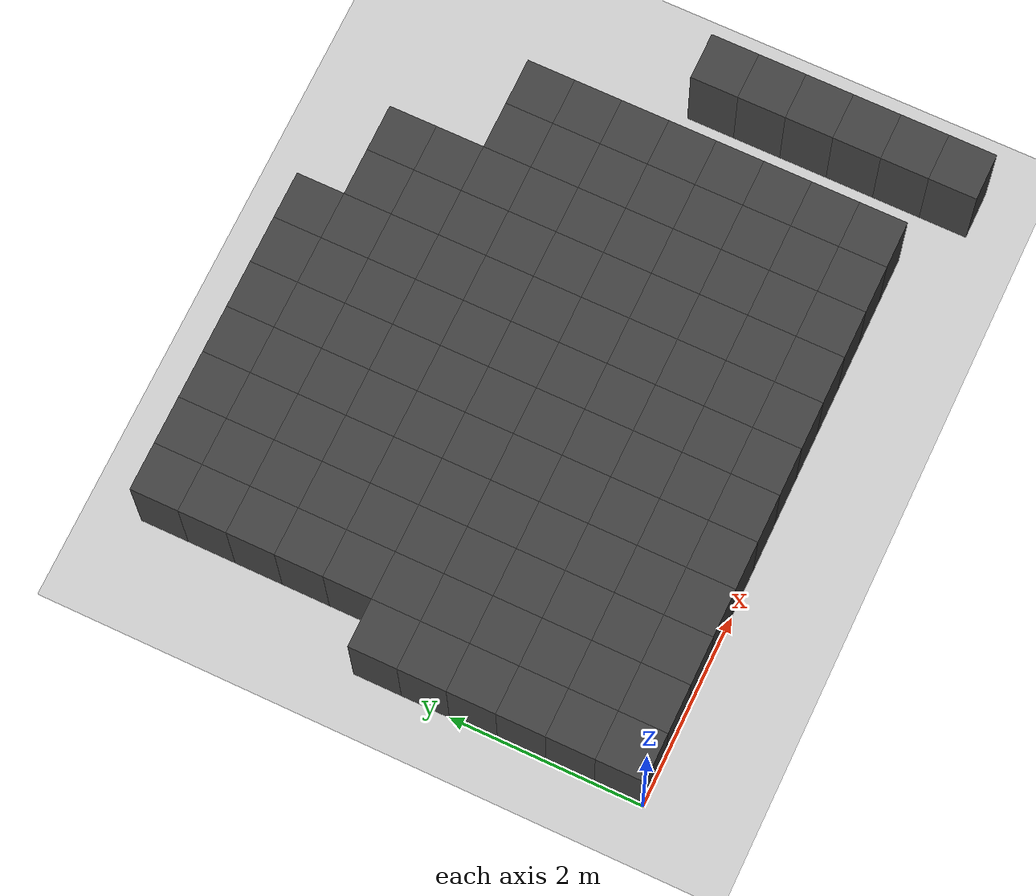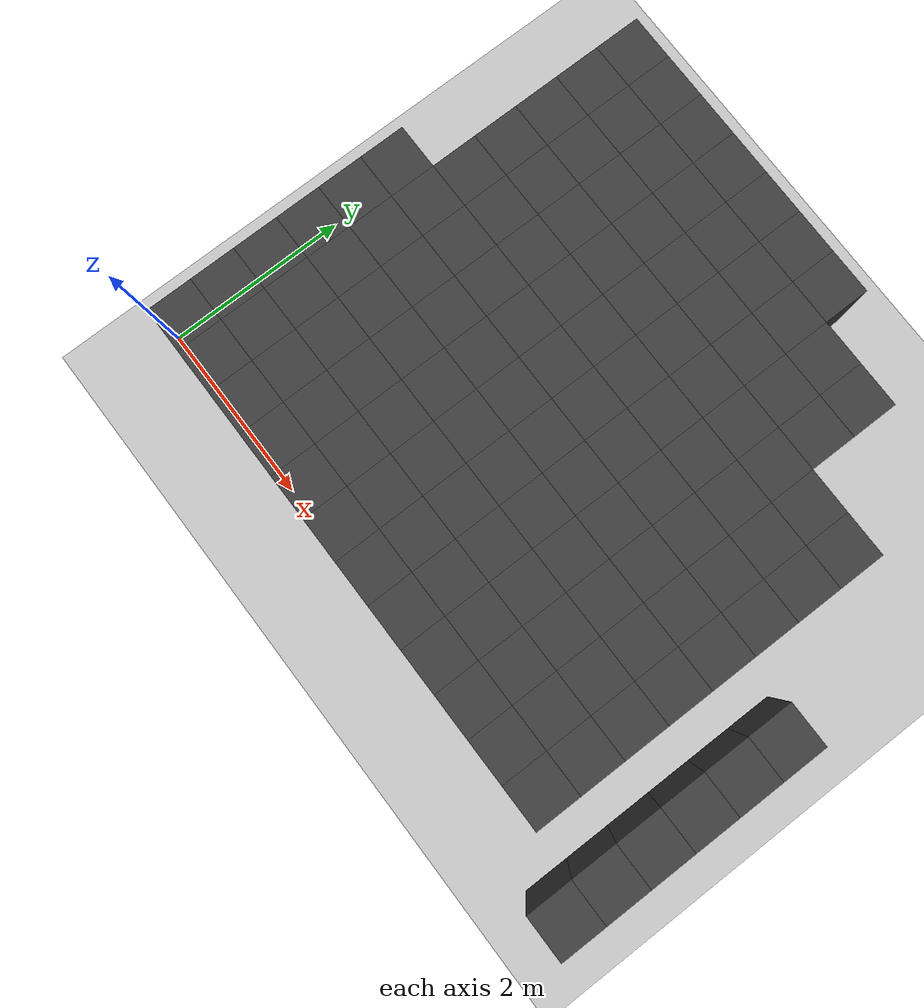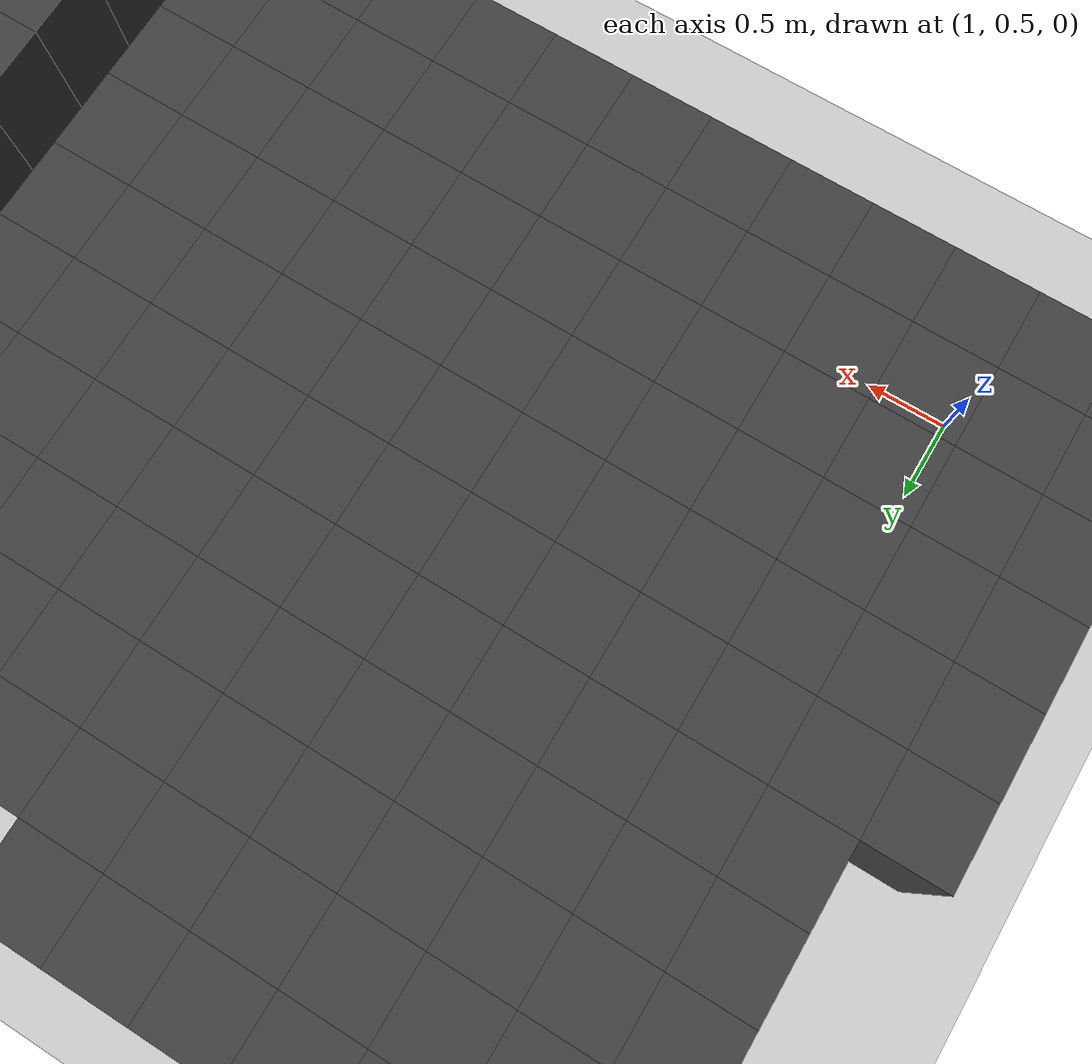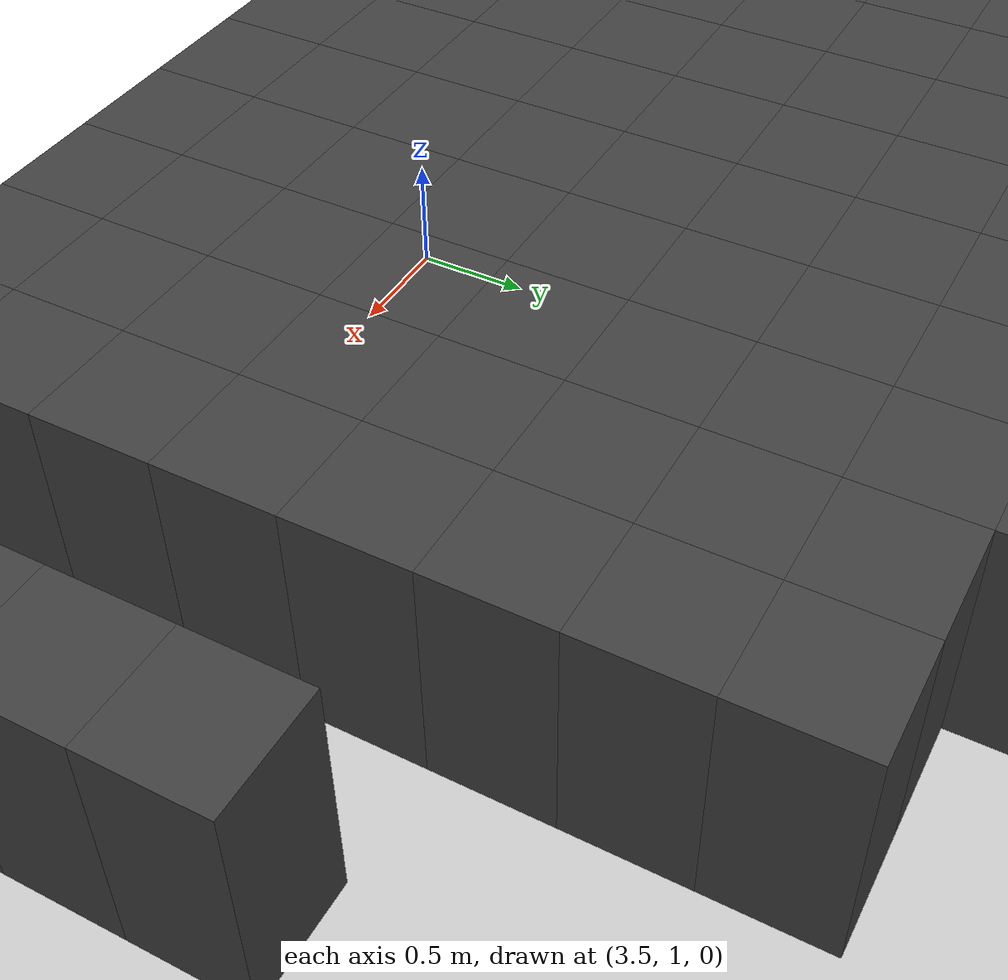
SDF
<sdf version="1.7">
 <world name="map_13820">
  <model name="ground_plane">
   <static>true</static>
   <link name="link">
    <collision name="collision">
     <geometry><plane><normal>0 0 1</normal><size>200 200</size></plane></geometry>
    </collision>
    <visual name="visual">
     <geometry><plane><normal>0 0 1</normal><size>200 200</size></plane></geometry>
     <material><ambient>0.8 0.8 0.8 1</ambient><diffuse>0.8 0.8 0.8 1</diffuse></material>
    </visual>
   </link>
  </model>
  <model name="maze_environment">
   <static>true</static>
   <link name="wall_465">
    <pose>0.750 5.250 0.500 0 0 0</pose>
    <collision name="col"><geometry><box><size>0.5 0.5 1.0</size></box></geometry></collision>
    <visual name="vis">
     <geometry><box><size>0.5 0.5 1.0</size></box></geometry>
     <material><ambient>0.15 0.15 0.15 1</ambient><diffuse>0.25 0.25 0.25 1</diffuse></material>
    </visual>
   </link>
   <link name="wall_466">
    <pose>1.250 5.250 0.500 0 0 0</pose>
    <collision name="col"><geometry><box><size>0.5 0.5 1.0</size></box></geometry></collision>
    <visual name="vis">
     <geometry><box><size>0.5 0.5 1.0</size></box></geometry>
     <material><ambient>0.15 0.15 0.15 1</ambient><diffuse>0.25 0.25 0.25 1</diffuse></material>
    </visual>
   </link>
   <link name="wall_467">
    <pose>1.750 5.250 0.500 0 0 0</pose>
    <collision name="col"><geometry><box><size>0.5 0.5 1.0</size></box></geometry></collision>
    <visual name="vis">
     <geometry><box><size>0.5 0.5 1.0</size></box></geometry>
     <material><ambient>0.15 0.15 0.15 1</ambient><diffuse>0.25 0.25 0.25 1</diffuse></material>
    </visual>
   </link>
   <link name="wall_468">
    <pose>2.250 5.250 0.500 0 0 0</pose>
    <collision name="col"><geometry><box><size>0.5 0.5 1.0</size></box></geometry></collision>
    <visual name="vis">
     <geometry><box><size>0.5 0.5 1.0</size></box></geometry>
     <material><ambient>0.15 0.15 0.15 1</ambient><diffuse>0.25 0.25 0.25 1</diffuse></material>
    </visual>
   </link>
   <link name="wall_469">
    <pose>2.750 5.250 0.500 0 0 0</pose>
    <collision name="col"><geometry><box><size>0.5 0.5 1.0</size></box></geometry></collision>
    <visual name="vis">
     <geometry><box><size>0.5 0.5 1.0</size></box></geometry>
     <material><ambient>0.15 0.15 0.15 1</ambient><diffuse>0.25 0.25 0.25 1</diffuse></material>
    </visual>
   </link>
   <link name="wall_470">
    <pose>3.250 5.250 0.500 0 0 0</pose>
    <collision name="col"><geometry><box><size>0.5 0.5 1.0</size></box></geometry></collision>
    <visual name="vis">
     <geometry><box><size>0.5 0.5 1.0</size></box></geometry>
     <material><ambient>0.15 0.15 0.15 1</ambient><diffuse>0.25 0.25 0.25 1</diffuse></material>
    </visual>
   </link>
   <link name="wall_471">
    <pose>3.750 5.250 0.500 0 0 0</pose>
    <collision name="col"><geometry><box><size>0.5 0.5 1.0</size></box></geometry></collision>
    <visual name="vis">
     <geometry><box><size>0.5 0.5 1.0</size></box></geometry>
     <material><ambient>0.15 0.15 0.15 1</ambient><diffuse>0.25 0.25 0.25 1</diffuse></material>
    </visual>
   </link>
   <link name="wall_499">
    <pose>0.750 4.750 0.500 0 0 0</pose>
    <collision name="col"><geometry><box><size>0.5 0.5 1.0</size></box></geometry></collision>
    <visual name="vis">
     <geometry><box><size>0.5 0.5 1.0</size></box></geometry>
     <material><ambient>0.15 0.15 0.15 1</ambient><diffuse>0.25 0.25 0.25 1</diffuse></material>
    </visual>
   </link>
   <link name="wall_500">
    <pose>1.250 4.750 0.500 0 0 0</pose>
    <collision name="col"><geometry><box><size>0.5 0.5 1.0</size></box></geometry></collision>
    <visual name="vis">
     <geometry><box><size>0.5 0.5 1.0</size></box></geometry>
     <material><ambient>0.15 0.15 0.15 1</ambient><diffuse>0.25 0.25 0.25 1</diffuse></material>
    </visual>
   </link>
   <link name="wall_501">
    <pose>1.750 4.750 0.500 0 0 0</pose>
    <collision name="col"><geometry><box><size>0.5 0.5 1.0</size></box></geometry></collision>
    <visual name="vis">
     <geometry><box><size>0.5 0.5 1.0</size></box></geometry>
     <material><ambient>0.15 0.15 0.15 1</ambient><diffuse>0.25 0.25 0.25 1</diffuse></material>
    </visual>
   </link>
   <link name="wall_502">
    <pose>2.250 4.750 0.500 0 0 0</pose>
    <collision name="col"><geometry><box><size>0.5 0.5 1.0</size></box></geometry></collision>
    <visual name="vis">
     <geometry><box><size>0.5 0.5 1.0</size></box></geometry>
     <material><ambient>0.15 0.15 0.15 1</ambient><diffuse>0.25 0.25 0.25 1</diffuse></material>
    </visual>
   </link>
   <link name="wall_503">
    <pose>2.750 4.750 0.500 0 0 0</pose>
    <collision name="col"><geometry><box><size>0.5 0.5 1.0</size></box></geometry></collision>
    <visual name="vis">
     <geometry><box><size>0.5 0.5 1.0</size></box></geometry>
     <material><ambient>0.15 0.15 0.15 1</ambient><diffuse>0.25 0.25 0.25 1</diffuse></material>
    </visual>
   </link>
   <link name="wall_504">
    <pose>3.250 4.750 0.500 0 0 0</pose>
    <collision name="col"><geometry><box><size>0.5 0.5 1.0</size></box></geometry></collision>
    <visual name="vis">
     <geometry><box><size>0.5 0.5 1.0</size></box></geometry>
     <material><ambient>0.15 0.15 0.15 1</ambient><diffuse>0.25 0.25 0.25 1</diffuse></material>
    </visual>
   </link>
   <link name="wall_505">
    <pose>3.750 4.750 0.500 0 0 0</pose>
    <collision name="col"><geometry><box><size>0.5 0.5 1.0</size></box></geometry></collision>
    <visual name="vis">
     <geometry><box><size>0.5 0.5 1.0</size></box></geometry>
     <material><ambient>0.15 0.15 0.15 1</ambient><diffuse>0.25 0.25 0.25 1</diffuse></material>
    </visual>
   </link>
   <link name="wall_506">
    <pose>4.250 4.750 0.500 0 0 0</pose>
    <collision name="col"><geometry><box><size>0.5 0.5 1.0</size></box></geometry></collision>
    <visual name="vis">
     <geometry><box><size>0.5 0.5 1.0</size></box></geometry>
     <material><ambient>0.15 0.15 0.15 1</ambient><diffuse>0.25 0.25 0.25 1</diffuse></material>
    </visual>
   </link>
   <link name="wall_507">
    <pose>4.750 4.750 0.500 0 0 0</pose>
    <collision name="col"><geometry><box><size>0.5 0.5 1.0</size></box></geometry></collision>
    <visual name="vis">
     <geometry><box><size>0.5 0.5 1.0</size></box></geometry>
     <material><ambient>0.15 0.15 0.15 1</ambient><diffuse>0.25 0.25 0.25 1</diffuse></material>
    </visual>
   </link>
   <link name="wall_533">
    <pose>0.750 4.250 0.500 0 0 0</pose>
    <collision name="col"><geometry><box><size>0.5 0.5 1.0</size></box></geometry></collision>
    <visual name="vis">
     <geometry><box><size>0.5 0.5 1.0</size></box></geometry>
     <material><ambient>0.15 0.15 0.15 1</ambient><diffuse>0.25 0.25 0.25 1</diffuse></material>
    </visual>
   </link>
   <link name="wall_534">
    <pose>1.250 4.250 0.500 0 0 0</pose>
    <collision name="col"><geometry><box><size>0.5 0.5 1.0</size></box></geometry></collision>
    <visual name="vis">
     <geometry><box><size>0.5 0.5 1.0</size></box></geometry>
     <material><ambient>0.15 0.15 0.15 1</ambient><diffuse>0.25 0.25 0.25 1</diffuse></material>
    </visual>
   </link>
   <link name="wall_535">
    <pose>1.750 4.250 0.500 0 0 0</pose>
    <collision name="col"><geometry><box><size>0.5 0.5 1.0</size></box></geometry></collision>
    <visual name="vis">
     <geometry><box><size>0.5 0.5 1.0</size></box></geometry>
     <material><ambient>0.15 0.15 0.15 1</ambient><diffuse>0.25 0.25 0.25 1</diffuse></material>
    </visual>
   </link>
   <link name="wall_536">
    <pose>2.250 4.250 0.500 0 0 0</pose>
    <collision name="col"><geometry><box><size>0.5 0.5 1.0</size></box></geometry></collision>
    <visual name="vis">
     <geometry><box><size>0.5 0.5 1.0</size></box></geometry>
     <material><ambient>0.15 0.15 0.15 1</ambient><diffuse>0.25 0.25 0.25 1</diffuse></material>
    </visual>
   </link>
   <link name="wall_537">
    <pose>2.750 4.250 0.500 0 0 0</pose>
    <collision name="col"><geometry><box><size>0.5 0.5 1.0</size></box></geometry></collision>
    <visual name="vis">
     <geometry><box><size>0.5 0.5 1.0</size></box></geometry>
     <material><ambient>0.15 0.15 0.15 1</ambient><diffuse>0.25 0.25 0.25 1</diffuse></material>
    </visual>
   </link>
   <link name="wall_538">
    <pose>3.250 4.250 0.500 0 0 0</pose>
    <collision name="col"><geometry><box><size>0.5 0.5 1.0</size></box></geometry></collision>
    <visual name="vis">
     <geometry><box><size>0.5 0.5 1.0</size></box></geometry>
     <material><ambient>0.15 0.15 0.15 1</ambient><diffuse>0.25 0.25 0.25 1</diffuse></material>
    </visual>
   </link>
   <link name="wall_539">
    <pose>3.750 4.250 0.500 0 0 0</pose>
    <collision name="col"><geometry><box><size>0.5 0.5 1.0</size></box></geometry></collision>
    <visual name="vis">
     <geometry><box><size>0.5 0.5 1.0</size></box></geometry>
     <material><ambient>0.15 0.15 0.15 1</ambient><diffuse>0.25 0.25 0.25 1</diffuse></material>
    </visual>
   </link>
   <link name="wall_540">
    <pose>4.250 4.250 0.500 0 0 0</pose>
    <collision name="col"><geometry><box><size>0.5 0.5 1.0</size></box></geometry></collision>
    <visual name="vis">
     <geometry><box><size>0.5 0.5 1.0</size></box></geometry>
     <material><ambient>0.15 0.15 0.15 1</ambient><diffuse>0.25 0.25 0.25 1</diffuse></material>
    </visual>
   </link>
   <link name="wall_541">
    <pose>4.750 4.250 0.500 0 0 0</pose>
    <collision name="col"><geometry><box><size>0.5 0.5 1.0</size></box></geometry></collision>
    <visual name="vis">
     <geometry><box><size>0.5 0.5 1.0</size></box></geometry>
     <material><ambient>0.15 0.15 0.15 1</ambient><diffuse>0.25 0.25 0.25 1</diffuse></material>
    </visual>
   </link>
   <link name="wall_566">
    <pose>0.750 3.750 0.500 0 0 0</pose>
    <collision name="col"><geometry><box><size>0.5 0.5 1.0</size></box></geometry></collision>
    <visual name="vis">
     <geometry><box><size>0.5 0.5 1.0</size></box></geometry>
     <material><ambient>0.15 0.15 0.15 1</ambient><diffuse>0.25 0.25 0.25 1</diffuse></material>
    </visual>
   </link>
   <link name="wall_567">
    <pose>1.250 3.750 0.500 0 0 0</pose>
    <collision name="col"><geometry><box><size>0.5 0.5 1.0</size></box></geometry></collision>
    <visual name="vis">
     <geometry><box><size>0.5 0.5 1.0</size></box></geometry>
     <material><ambient>0.15 0.15 0.15 1</ambient><diffuse>0.25 0.25 0.25 1</diffuse></material>
    </visual>
   </link>
   <link name="wall_568">
    <pose>1.750 3.750 0.500 0 0 0</pose>
    <collision name="col"><geometry><box><size>0.5 0.5 1.0</size></box></geometry></collision>
    <visual name="vis">
     <geometry><box><size>0.5 0.5 1.0</size></box></geometry>
     <material><ambient>0.15 0.15 0.15 1</ambient><diffuse>0.25 0.25 0.25 1</diffuse></material>
    </visual>
   </link>
   <link name="wall_569">
    <pose>2.250 3.750 0.500 0 0 0</pose>
    <collision name="col"><geometry><box><size>0.5 0.5 1.0</size></box></geometry></collision>
    <visual name="vis">
     <geometry><box><size>0.5 0.5 1.0</size></box></geometry>
     <material><ambient>0.15 0.15 0.15 1</ambient><diffuse>0.25 0.25 0.25 1</diffuse></material>
    </visual>
   </link>
   <link name="wall_570">
    <pose>2.750 3.750 0.500 0 0 0</pose>
    <collision name="col"><geometry><box><size>0.5 0.5 1.0</size></box></geometry></collision>
    <visual name="vis">
     <geometry><box><size>0.5 0.5 1.0</size></box></geometry>
     <material><ambient>0.15 0.15 0.15 1</ambient><diffuse>0.25 0.25 0.25 1</diffuse></material>
    </visual>
   </link>
   <link name="wall_571">
    <pose>3.250 3.750 0.500 0 0 0</pose>
    <collision name="col"><geometry><box><size>0.5 0.5 1.0</size></box></geometry></collision>
    <visual name="vis">
     <geometry><box><size>0.5 0.5 1.0</size></box></geometry>
     <material><ambient>0.15 0.15 0.15 1</ambient><diffuse>0.25 0.25 0.25 1</diffuse></material>
    </visual>
   </link>
   <link name="wall_572">
    <pose>3.750 3.750 0.500 0 0 0</pose>
    <collision name="col"><geometry><box><size>0.5 0.5 1.0</size></box></geometry></collision>
    <visual name="vis">
     <geometry><box><size>0.5 0.5 1.0</size></box></geometry>
     <material><ambient>0.15 0.15 0.15 1</ambient><diffuse>0.25 0.25 0.25 1</diffuse></material>
    </visual>
   </link>
   <link name="wall_573">
    <pose>4.250 3.750 0.500 0 0 0</pose>
    <collision name="col"><geometry><box><size>0.5 0.5 1.0</size></box></geometry></collision>
    <visual name="vis">
     <geometry><box><size>0.5 0.5 1.0</size></box></geometry>
     <material><ambient>0.15 0.15 0.15 1</ambient><diffuse>0.25 0.25 0.25 1</diffuse></material>
    </visual>
   </link>
   <link name="wall_574">
    <pose>4.750 3.750 0.500 0 0 0</pose>
    <collision name="col"><geometry><box><size>0.5 0.5 1.0</size></box></geometry></collision>
    <visual name="vis">
     <geometry><box><size>0.5 0.5 1.0</size></box></geometry>
     <material><ambient>0.15 0.15 0.15 1</ambient><diffuse>0.25 0.25 0.25 1</diffuse></material>
    </visual>
   </link>
   <link name="wall_575">
    <pose>5.250 3.750 0.500 0 0 0</pose>
    <collision name="col"><geometry><box><size>0.5 0.5 1.0</size></box></geometry></collision>
    <visual name="vis">
     <geometry><box><size>0.5 0.5 1.0</size></box></geometry>
     <material><ambient>0.15 0.15 0.15 1</ambient><diffuse>0.25 0.25 0.25 1</diffuse></material>
    </visual>
   </link>
   <link name="wall_576">
    <pose>5.750 3.750 0.500 0 0 0</pose>
    <collision name="col"><geometry><box><size>0.5 0.5 1.0</size></box></geometry></collision>
    <visual name="vis">
     <geometry><box><size>0.5 0.5 1.0</size></box></geometry>
     <material><ambient>0.15 0.15 0.15 1</ambient><diffuse>0.25 0.25 0.25 1</diffuse></material>
    </visual>
   </link>
   <link name="wall_603">
    <pose>0.750 3.250 0.500 0 0 0</pose>
    <collision name="col"><geometry><box><size>0.5 0.5 1.0</size></box></geometry></collision>
    <visual name="vis">
     <geometry><box><size>0.5 0.5 1.0</size></box></geometry>
     <material><ambient>0.15 0.15 0.15 1</ambient><diffuse>0.25 0.25 0.25 1</diffuse></material>
    </visual>
   </link>
   <link name="wall_604">
    <pose>1.250 3.250 0.500 0 0 0</pose>
    <collision name="col"><geometry><box><size>0.5 0.5 1.0</size></box></geometry></collision>
    <visual name="vis">
     <geometry><box><size>0.5 0.5 1.0</size></box></geometry>
     <material><ambient>0.15 0.15 0.15 1</ambient><diffuse>0.25 0.25 0.25 1</diffuse></material>
    </visual>
   </link>
   <link name="wall_605">
    <pose>1.750 3.250 0.500 0 0 0</pose>
    <collision name="col"><geometry><box><size>0.5 0.5 1.0</size></box></geometry></collision>
    <visual name="vis">
     <geometry><box><size>0.5 0.5 1.0</size></box></geometry>
     <material><ambient>0.15 0.15 0.15 1</ambient><diffuse>0.25 0.25 0.25 1</diffuse></material>
    </visual>
   </link>
   <link name="wall_606">
    <pose>2.250 3.250 0.500 0 0 0</pose>
    <collision name="col"><geometry><box><size>0.5 0.5 1.0</size></box></geometry></collision>
    <visual name="vis">
     <geometry><box><size>0.5 0.5 1.0</size></box></geometry>
     <material><ambient>0.15 0.15 0.15 1</ambient><diffuse>0.25 0.25 0.25 1</diffuse></material>
    </visual>
   </link>
   <link name="wall_607">
    <pose>2.750 3.250 0.500 0 0 0</pose>
    <collision name="col"><geometry><box><size>0.5 0.5 1.0</size></box></geometry></collision>
    <visual name="vis">
     <geometry><box><size>0.5 0.5 1.0</size></box></geometry>
     <material><ambient>0.15 0.15 0.15 1</ambient><diffuse>0.25 0.25 0.25 1</diffuse></material>
    </visual>
   </link>
   <link name="wall_608">
    <pose>3.250 3.250 0.500 0 0 0</pose>
    <collision name="col"><geometry><box><size>0.5 0.5 1.0</size></box></geometry></collision>
    <visual name="vis">
     <geometry><box><size>0.5 0.5 1.0</size></box></geometry>
     <material><ambient>0.15 0.15 0.15 1</ambient><diffuse>0.25 0.25 0.25 1</diffuse></material>
    </visual>
   </link>
   <link name="wall_609">
    <pose>3.750 3.250 0.500 0 0 0</pose>
    <collision name="col"><geometry><box><size>0.5 0.5 1.0</size></box></geometry></collision>
    <visual name="vis">
     <geometry><box><size>0.5 0.5 1.0</size></box></geometry>
     <material><ambient>0.15 0.15 0.15 1</ambient><diffuse>0.25 0.25 0.25 1</diffuse></material>
    </visual>
   </link>
   <link name="wall_610">
    <pose>4.250 3.250 0.500 0 0 0</pose>
    <collision name="col"><geometry><box><size>0.5 0.5 1.0</size></box></geometry></collision>
    <visual name="vis">
     <geometry><box><size>0.5 0.5 1.0</size></box></geometry>
     <material><ambient>0.15 0.15 0.15 1</ambient><diffuse>0.25 0.25 0.25 1</diffuse></material>
    </visual>
   </link>
   <link name="wall_611">
    <pose>4.750 3.250 0.500 0 0 0</pose>
    <collision name="col"><geometry><box><size>0.5 0.5 1.0</size></box></geometry></collision>
    <visual name="vis">
     <geometry><box><size>0.5 0.5 1.0</size></box></geometry>
     <material><ambient>0.15 0.15 0.15 1</ambient><diffuse>0.25 0.25 0.25 1</diffuse></material>
    </visual>
   </link>
   <link name="wall_612">
    <pose>5.250 3.250 0.500 0 0 0</pose>
    <collision name="col"><geometry><box><size>0.5 0.5 1.0</size></box></geometry></collision>
    <visual name="vis">
     <geometry><box><size>0.5 0.5 1.0</size></box></geometry>
     <material><ambient>0.15 0.15 0.15 1</ambient><diffuse>0.25 0.25 0.25 1</diffuse></material>
    </visual>
   </link>
   <link name="wall_613">
    <pose>5.750 3.250 0.500 0 0 0</pose>
    <collision name="col"><geometry><box><size>0.5 0.5 1.0</size></box></geometry></collision>
    <visual name="vis">
     <geometry><box><size>0.5 0.5 1.0</size></box></geometry>
     <material><ambient>0.15 0.15 0.15 1</ambient><diffuse>0.25 0.25 0.25 1</diffuse></material>
    </visual>
   </link>
   <link name="wall_646">
    <pose>0.250 2.750 0.500 0 0 0</pose>
    <collision name="col"><geometry><box><size>0.5 0.5 1.0</size></box></geometry></collision>
    <visual name="vis">
     <geometry><box><size>0.5 0.5 1.0</size></box></geometry>
     <material><ambient>0.15 0.15 0.15 1</ambient><diffuse>0.25 0.25 0.25 1</diffuse></material>
    </visual>
   </link>
   <link name="wall_647">
    <pose>0.750 2.750 0.500 0 0 0</pose>
    <collision name="col"><geometry><box><size>0.5 0.5 1.0</size></box></geometry></collision>
    <visual name="vis">
     <geometry><box><size>0.5 0.5 1.0</size></box></geometry>
     <material><ambient>0.15 0.15 0.15 1</ambient><diffuse>0.25 0.25 0.25 1</diffuse></material>
    </visual>
   </link>
   <link name="wall_648">
    <pose>1.250 2.750 0.500 0 0 0</pose>
    <collision name="col"><geometry><box><size>0.5 0.5 1.0</size></box></geometry></collision>
    <visual name="vis">
     <geometry><box><size>0.5 0.5 1.0</size></box></geometry>
     <material><ambient>0.15 0.15 0.15 1</ambient><diffuse>0.25 0.25 0.25 1</diffuse></material>
    </visual>
   </link>
   <link name="wall_649">
    <pose>1.750 2.750 0.500 0 0 0</pose>
    <collision name="col"><geometry><box><size>0.5 0.5 1.0</size></box></geometry></collision>
    <visual name="vis">
     <geometry><box><size>0.5 0.5 1.0</size></box></geometry>
     <material><ambient>0.15 0.15 0.15 1</ambient><diffuse>0.25 0.25 0.25 1</diffuse></material>
    </visual>
   </link>
   <link name="wall_650">
    <pose>2.250 2.750 0.500 0 0 0</pose>
    <collision name="col"><geometry><box><size>0.5 0.5 1.0</size></box></geometry></collision>
    <visual name="vis">
     <geometry><box><size>0.5 0.5 1.0</size></box></geometry>
     <material><ambient>0.15 0.15 0.15 1</ambient><diffuse>0.25 0.25 0.25 1</diffuse></material>
    </visual>
   </link>
   <link name="wall_651">
    <pose>2.750 2.750 0.500 0 0 0</pose>
    <collision name="col"><geometry><box><size>0.5 0.5 1.0</size></box></geometry></collision>
    <visual name="vis">
     <geometry><box><size>0.5 0.5 1.0</size></box></geometry>
     <material><ambient>0.15 0.15 0.15 1</ambient><diffuse>0.25 0.25 0.25 1</diffuse></material>
    </visual>
   </link>
   <link name="wall_652">
    <pose>3.250 2.750 0.500 0 0 0</pose>
    <collision name="col"><geometry><box><size>0.5 0.5 1.0</size></box></geometry></collision>
    <visual name="vis">
     <geometry><box><size>0.5 0.5 1.0</size></box></geometry>
     <material><ambient>0.15 0.15 0.15 1</ambient><diffuse>0.25 0.25 0.25 1</diffuse></material>
    </visual>
   </link>
   <link name="wall_653">
    <pose>3.750 2.750 0.500 0 0 0</pose>
    <collision name="col"><geometry><box><size>0.5 0.5 1.0</size></box></geometry></collision>
    <visual name="vis">
     <geometry><box><size>0.5 0.5 1.0</size></box></geometry>
     <material><ambient>0.15 0.15 0.15 1</ambient><diffuse>0.25 0.25 0.25 1</diffuse></material>
    </visual>
   </link>
   <link name="wall_654">
    <pose>4.250 2.750 0.500 0 0 0</pose>
    <collision name="col"><geometry><box><size>0.5 0.5 1.0</size></box></geometry></collision>
    <visual name="vis">
     <geometry><box><size>0.5 0.5 1.0</size></box></geometry>
     <material><ambient>0.15 0.15 0.15 1</ambient><diffuse>0.25 0.25 0.25 1</diffuse></material>
    </visual>
   </link>
   <link name="wall_655">
    <pose>4.750 2.750 0.500 0 0 0</pose>
    <collision name="col"><geometry><box><size>0.5 0.5 1.0</size></box></geometry></collision>
    <visual name="vis">
     <geometry><box><size>0.5 0.5 1.0</size></box></geometry>
     <material><ambient>0.15 0.15 0.15 1</ambient><diffuse>0.25 0.25 0.25 1</diffuse></material>
    </visual>
   </link>
   <link name="wall_656">
    <pose>5.250 2.750 0.500 0 0 0</pose>
    <collision name="col"><geometry><box><size>0.5 0.5 1.0</size></box></geometry></collision>
    <visual name="vis">
     <geometry><box><size>0.5 0.5 1.0</size></box></geometry>
     <material><ambient>0.15 0.15 0.15 1</ambient><diffuse>0.25 0.25 0.25 1</diffuse></material>
    </visual>
   </link>
   <link name="wall_657">
    <pose>5.750 2.750 0.500 0 0 0</pose>
    <collision name="col"><geometry><box><size>0.5 0.5 1.0</size></box></geometry></collision>
    <visual name="vis">
     <geometry><box><size>0.5 0.5 1.0</size></box></geometry>
     <material><ambient>0.15 0.15 0.15 1</ambient><diffuse>0.25 0.25 0.25 1</diffuse></material>
    </visual>
   </link>
   <link name="wall_688">
    <pose>0.250 2.250 0.500 0 0 0</pose>
    <collision name="col"><geometry><box><size>0.5 0.5 1.0</size></box></geometry></collision>
    <visual name="vis">
     <geometry><box><size>0.5 0.5 1.0</size></box></geometry>
     <material><ambient>0.15 0.15 0.15 1</ambient><diffuse>0.25 0.25 0.25 1</diffuse></material>
    </visual>
   </link>
   <link name="wall_689">
    <pose>0.750 2.250 0.500 0 0 0</pose>
    <collision name="col"><geometry><box><size>0.5 0.5 1.0</size></box></geometry></collision>
    <visual name="vis">
     <geometry><box><size>0.5 0.5 1.0</size></box></geometry>
     <material><ambient>0.15 0.15 0.15 1</ambient><diffuse>0.25 0.25 0.25 1</diffuse></material>
    </visual>
   </link>
   <link name="wall_690">
    <pose>1.250 2.250 0.500 0 0 0</pose>
    <collision name="col"><geometry><box><size>0.5 0.5 1.0</size></box></geometry></collision>
    <visual name="vis">
     <geometry><box><size>0.5 0.5 1.0</size></box></geometry>
     <material><ambient>0.15 0.15 0.15 1</ambient><diffuse>0.25 0.25 0.25 1</diffuse></material>
    </visual>
   </link>
   <link name="wall_691">
    <pose>1.750 2.250 0.500 0 0 0</pose>
    <collision name="col"><geometry><box><size>0.5 0.5 1.0</size></box></geometry></collision>
    <visual name="vis">
     <geometry><box><size>0.5 0.5 1.0</size></box></geometry>
     <material><ambient>0.15 0.15 0.15 1</ambient><diffuse>0.25 0.25 0.25 1</diffuse></material>
    </visual>
   </link>
   <link name="wall_692">
    <pose>2.250 2.250 0.500 0 0 0</pose>
    <collision name="col"><geometry><box><size>0.5 0.5 1.0</size></box></geometry></collision>
    <visual name="vis">
     <geometry><box><size>0.5 0.5 1.0</size></box></geometry>
     <material><ambient>0.15 0.15 0.15 1</ambient><diffuse>0.25 0.25 0.25 1</diffuse></material>
    </visual>
   </link>
   <link name="wall_693">
    <pose>2.750 2.250 0.500 0 0 0</pose>
    <collision name="col"><geometry><box><size>0.5 0.5 1.0</size></box></geometry></collision>
    <visual name="vis">
     <geometry><box><size>0.5 0.5 1.0</size></box></geometry>
     <material><ambient>0.15 0.15 0.15 1</ambient><diffuse>0.25 0.25 0.25 1</diffuse></material>
    </visual>
   </link>
   <link name="wall_694">
    <pose>3.250 2.250 0.500 0 0 0</pose>
    <collision name="col"><geometry><box><size>0.5 0.5 1.0</size></box></geometry></collision>
    <visual name="vis">
     <geometry><box><size>0.5 0.5 1.0</size></box></geometry>
     <material><ambient>0.15 0.15 0.15 1</ambient><diffuse>0.25 0.25 0.25 1</diffuse></material>
    </visual>
   </link>
   <link name="wall_695">
    <pose>3.750 2.250 0.500 0 0 0</pose>
    <collision name="col"><geometry><box><size>0.5 0.5 1.0</size></box></geometry></collision>
    <visual name="vis">
     <geometry><box><size>0.5 0.5 1.0</size></box></geometry>
     <material><ambient>0.15 0.15 0.15 1</ambient><diffuse>0.25 0.25 0.25 1</diffuse></material>
    </visual>
   </link>
   <link name="wall_696">
    <pose>4.250 2.250 0.500 0 0 0</pose>
    <collision name="col"><geometry><box><size>0.5 0.5 1.0</size></box></geometry></collision>
    <visual name="vis">
     <geometry><box><size>0.5 0.5 1.0</size></box></geometry>
     <material><ambient>0.15 0.15 0.15 1</ambient><diffuse>0.25 0.25 0.25 1</diffuse></material>
    </visual>
   </link>
   <link name="wall_697">
    <pose>4.750 2.250 0.500 0 0 0</pose>
    <collision name="col"><geometry><box><size>0.5 0.5 1.0</size></box></geometry></collision>
    <visual name="vis">
     <geometry><box><size>0.5 0.5 1.0</size></box></geometry>
     <material><ambient>0.15 0.15 0.15 1</ambient><diffuse>0.25 0.25 0.25 1</diffuse></material>
    </visual>
   </link>
   <link name="wall_698">
    <pose>5.250 2.250 0.500 0 0 0</pose>
    <collision name="col"><geometry><box><size>0.5 0.5 1.0</size></box></geometry></collision>
    <visual name="vis">
     <geometry><box><size>0.5 0.5 1.0</size></box></geometry>
     <material><ambient>0.15 0.15 0.15 1</ambient><diffuse>0.25 0.25 0.25 1</diffuse></material>
    </visual>
   </link>
   <link name="wall_699">
    <pose>5.750 2.250 0.500 0 0 0</pose>
    <collision name="col"><geometry><box><size>0.5 0.5 1.0</size></box></geometry></collision>
    <visual name="vis">
     <geometry><box><size>0.5 0.5 1.0</size></box></geometry>
     <material><ambient>0.15 0.15 0.15 1</ambient><diffuse>0.25 0.25 0.25 1</diffuse></material>
    </visual>
   </link>
   <link name="wall_700">
    <pose>6.750 2.250 0.500 0 0 0</pose>
    <collision name="col"><geometry><box><size>0.5 0.5 1.0</size></box></geometry></collision>
    <visual name="vis">
     <geometry><box><size>0.5 0.5 1.0</size></box></geometry>
     <material><ambient>0.15 0.15 0.15 1</ambient><diffuse>0.25 0.25 0.25 1</diffuse></material>
    </visual>
   </link>
   <link name="wall_730">
    <pose>0.250 1.750 0.500 0 0 0</pose>
    <collision name="col"><geometry><box><size>0.5 0.5 1.0</size></box></geometry></collision>
    <visual name="vis">
     <geometry><box><size>0.5 0.5 1.0</size></box></geometry>
     <material><ambient>0.15 0.15 0.15 1</ambient><diffuse>0.25 0.25 0.25 1</diffuse></material>
    </visual>
   </link>
   <link name="wall_731">
    <pose>0.750 1.750 0.500 0 0 0</pose>
    <collision name="col"><geometry><box><size>0.5 0.5 1.0</size></box></geometry></collision>
    <visual name="vis">
     <geometry><box><size>0.5 0.5 1.0</size></box></geometry>
     <material><ambient>0.15 0.15 0.15 1</ambient><diffuse>0.25 0.25 0.25 1</diffuse></material>
    </visual>
   </link>
   <link name="wall_732">
    <pose>1.250 1.750 0.500 0 0 0</pose>
    <collision name="col"><geometry><box><size>0.5 0.5 1.0</size></box></geometry></collision>
    <visual name="vis">
     <geometry><box><size>0.5 0.5 1.0</size></box></geometry>
     <material><ambient>0.15 0.15 0.15 1</ambient><diffuse>0.25 0.25 0.25 1</diffuse></material>
    </visual>
   </link>
   <link name="wall_733">
    <pose>1.750 1.750 0.500 0 0 0</pose>
    <collision name="col"><geometry><box><size>0.5 0.5 1.0</size></box></geometry></collision>
    <visual name="vis">
     <geometry><box><size>0.5 0.5 1.0</size></box></geometry>
     <material><ambient>0.15 0.15 0.15 1</ambient><diffuse>0.25 0.25 0.25 1</diffuse></material>
    </visual>
   </link>
   <link name="wall_734">
    <pose>2.250 1.750 0.500 0 0 0</pose>
    <collision name="col"><geometry><box><size>0.5 0.5 1.0</size></box></geometry></collision>
    <visual name="vis">
     <geometry><box><size>0.5 0.5 1.0</size></box></geometry>
     <material><ambient>0.15 0.15 0.15 1</ambient><diffuse>0.25 0.25 0.25 1</diffuse></material>
    </visual>
   </link>
   <link name="wall_735">
    <pose>2.750 1.750 0.500 0 0 0</pose>
    <collision name="col"><geometry><box><size>0.5 0.5 1.0</size></box></geometry></collision>
    <visual name="vis">
     <geometry><box><size>0.5 0.5 1.0</size></box></geometry>
     <material><ambient>0.15 0.15 0.15 1</ambient><diffuse>0.25 0.25 0.25 1</diffuse></material>
    </visual>
   </link>
   <link name="wall_736">
    <pose>3.250 1.750 0.500 0 0 0</pose>
    <collision name="col"><geometry><box><size>0.5 0.5 1.0</size></box></geometry></collision>
    <visual name="vis">
     <geometry><box><size>0.5 0.5 1.0</size></box></geometry>
     <material><ambient>0.15 0.15 0.15 1</ambient><diffuse>0.25 0.25 0.25 1</diffuse></material>
    </visual>
   </link>
   <link name="wall_737">
    <pose>3.750 1.750 0.500 0 0 0</pose>
    <collision name="col"><geometry><box><size>0.5 0.5 1.0</size></box></geometry></collision>
    <visual name="vis">
     <geometry><box><size>0.5 0.5 1.0</size></box></geometry>
     <material><ambient>0.15 0.15 0.15 1</ambient><diffuse>0.25 0.25 0.25 1</diffuse></material>
    </visual>
   </link>
   <link name="wall_738">
    <pose>4.250 1.750 0.500 0 0 0</pose>
    <collision name="col"><geometry><box><size>0.5 0.5 1.0</size></box></geometry></collision>
    <visual name="vis">
     <geometry><box><size>0.5 0.5 1.0</size></box></geometry>
     <material><ambient>0.15 0.15 0.15 1</ambient><diffuse>0.25 0.25 0.25 1</diffuse></material>
    </visual>
   </link>
   <link name="wall_739">
    <pose>4.750 1.750 0.500 0 0 0</pose>
    <collision name="col"><geometry><box><size>0.5 0.5 1.0</size></box></geometry></collision>
    <visual name="vis">
     <geometry><box><size>0.5 0.5 1.0</size></box></geometry>
     <material><ambient>0.15 0.15 0.15 1</ambient><diffuse>0.25 0.25 0.25 1</diffuse></material>
    </visual>
   </link>
   <link name="wall_740">
    <pose>5.250 1.750 0.500 0 0 0</pose>
    <collision name="col"><geometry><box><size>0.5 0.5 1.0</size></box></geometry></collision>
    <visual name="vis">
     <geometry><box><size>0.5 0.5 1.0</size></box></geometry>
     <material><ambient>0.15 0.15 0.15 1</ambient><diffuse>0.25 0.25 0.25 1</diffuse></material>
    </visual>
   </link>
   <link name="wall_741">
    <pose>5.750 1.750 0.500 0 0 0</pose>
    <collision name="col"><geometry><box><size>0.5 0.5 1.0</size></box></geometry></collision>
    <visual name="vis">
     <geometry><box><size>0.5 0.5 1.0</size></box></geometry>
     <material><ambient>0.15 0.15 0.15 1</ambient><diffuse>0.25 0.25 0.25 1</diffuse></material>
    </visual>
   </link>
   <link name="wall_742">
    <pose>6.750 1.750 0.500 0 0 0</pose>
    <collision name="col"><geometry><box><size>0.5 0.5 1.0</size></box></geometry></collision>
    <visual name="vis">
     <geometry><box><size>0.5 0.5 1.0</size></box></geometry>
     <material><ambient>0.15 0.15 0.15 1</ambient><diffuse>0.25 0.25 0.25 1</diffuse></material>
    </visual>
   </link>
   <link name="wall_772">
    <pose>0.250 1.250 0.500 0 0 0</pose>
    <collision name="col"><geometry><box><size>0.5 0.5 1.0</size></box></geometry></collision>
    <visual name="vis">
     <geometry><box><size>0.5 0.5 1.0</size></box></geometry>
     <material><ambient>0.15 0.15 0.15 1</ambient><diffuse>0.25 0.25 0.25 1</diffuse></material>
    </visual>
   </link>
   <link name="wall_773">
    <pose>0.750 1.250 0.500 0 0 0</pose>
    <collision name="col"><geometry><box><size>0.5 0.5 1.0</size></box></geometry></collision>
    <visual name="vis">
     <geometry><box><size>0.5 0.5 1.0</size></box></geometry>
     <material><ambient>0.15 0.15 0.15 1</ambient><diffuse>0.25 0.25 0.25 1</diffuse></material>
    </visual>
   </link>
   <link name="wall_774">
    <pose>1.250 1.250 0.500 0 0 0</pose>
    <collision name="col"><geometry><box><size>0.5 0.5 1.0</size></box></geometry></collision>
    <visual name="vis">
     <geometry><box><size>0.5 0.5 1.0</size></box></geometry>
     <material><ambient>0.15 0.15 0.15 1</ambient><diffuse>0.25 0.25 0.25 1</diffuse></material>
    </visual>
   </link>
   <link name="wall_775">
    <pose>1.750 1.250 0.500 0 0 0</pose>
    <collision name="col"><geometry><box><size>0.5 0.5 1.0</size></box></geometry></collision>
    <visual name="vis">
     <geometry><box><size>0.5 0.5 1.0</size></box></geometry>
     <material><ambient>0.15 0.15 0.15 1</ambient><diffuse>0.25 0.25 0.25 1</diffuse></material>
    </visual>
   </link>
   <link name="wall_776">
    <pose>2.250 1.250 0.500 0 0 0</pose>
    <collision name="col"><geometry><box><size>0.5 0.5 1.0</size></box></geometry></collision>
    <visual name="vis">
     <geometry><box><size>0.5 0.5 1.0</size></box></geometry>
     <material><ambient>0.15 0.15 0.15 1</ambient><diffuse>0.25 0.25 0.25 1</diffuse></material>
    </visual>
   </link>
   <link name="wall_777">
    <pose>2.750 1.250 0.500 0 0 0</pose>
    <collision name="col"><geometry><box><size>0.5 0.5 1.0</size></box></geometry></collision>
    <visual name="vis">
     <geometry><box><size>0.5 0.5 1.0</size></box></geometry>
     <material><ambient>0.15 0.15 0.15 1</ambient><diffuse>0.25 0.25 0.25 1</diffuse></material>
    </visual>
   </link>
   <link name="wall_778">
    <pose>3.250 1.250 0.500 0 0 0</pose>
    <collision name="col"><geometry><box><size>0.5 0.5 1.0</size></box></geometry></collision>
    <visual name="vis">
     <geometry><box><size>0.5 0.5 1.0</size></box></geometry>
     <material><ambient>0.15 0.15 0.15 1</ambient><diffuse>0.25 0.25 0.25 1</diffuse></material>
    </visual>
   </link>
   <link name="wall_779">
    <pose>3.750 1.250 0.500 0 0 0</pose>
    <collision name="col"><geometry><box><size>0.5 0.5 1.0</size></box></geometry></collision>
    <visual name="vis">
     <geometry><box><size>0.5 0.5 1.0</size></box></geometry>
     <material><ambient>0.15 0.15 0.15 1</ambient><diffuse>0.25 0.25 0.25 1</diffuse></material>
    </visual>
   </link>
   <link name="wall_780">
    <pose>4.250 1.250 0.500 0 0 0</pose>
    <collision name="col"><geometry><box><size>0.5 0.5 1.0</size></box></geometry></collision>
    <visual name="vis">
     <geometry><box><size>0.5 0.5 1.0</size></box></geometry>
     <material><ambient>0.15 0.15 0.15 1</ambient><diffuse>0.25 0.25 0.25 1</diffuse></material>
    </visual>
   </link>
   <link name="wall_781">
    <pose>4.750 1.250 0.500 0 0 0</pose>
    <collision name="col"><geometry><box><size>0.5 0.5 1.0</size></box></geometry></collision>
    <visual name="vis">
     <geometry><box><size>0.5 0.5 1.0</size></box></geometry>
     <material><ambient>0.15 0.15 0.15 1</ambient><diffuse>0.25 0.25 0.25 1</diffuse></material>
    </visual>
   </link>
   <link name="wall_782">
    <pose>5.250 1.250 0.500 0 0 0</pose>
    <collision name="col"><geometry><box><size>0.5 0.5 1.0</size></box></geometry></collision>
    <visual name="vis">
     <geometry><box><size>0.5 0.5 1.0</size></box></geometry>
     <material><ambient>0.15 0.15 0.15 1</ambient><diffuse>0.25 0.25 0.25 1</diffuse></material>
    </visual>
   </link>
   <link name="wall_783">
    <pose>5.750 1.250 0.500 0 0 0</pose>
    <collision name="col"><geometry><box><size>0.5 0.5 1.0</size></box></geometry></collision>
    <visual name="vis">
     <geometry><box><size>0.5 0.5 1.0</size></box></geometry>
     <material><ambient>0.15 0.15 0.15 1</ambient><diffuse>0.25 0.25 0.25 1</diffuse></material>
    </visual>
   </link>
   <link name="wall_784">
    <pose>6.750 1.250 0.500 0 0 0</pose>
    <collision name="col"><geometry><box><size>0.5 0.5 1.0</size></box></geometry></collision>
    <visual name="vis">
     <geometry><box><size>0.5 0.5 1.0</size></box></geometry>
     <material><ambient>0.15 0.15 0.15 1</ambient><diffuse>0.25 0.25 0.25 1</diffuse></material>
    </visual>
   </link>
   <link name="wall_814">
    <pose>0.250 0.750 0.500 0 0 0</pose>
    <collision name="col"><geometry><box><size>0.5 0.5 1.0</size></box></geometry></collision>
    <visual name="vis">
     <geometry><box><size>0.5 0.5 1.0</size></box></geometry>
     <material><ambient>0.15 0.15 0.15 1</ambient><diffuse>0.25 0.25 0.25 1</diffuse></material>
    </visual>
   </link>
   <link name="wall_815">
    <pose>0.750 0.750 0.500 0 0 0</pose>
    <collision name="col"><geometry><box><size>0.5 0.5 1.0</size></box></geometry></collision>
    <visual name="vis">
     <geometry><box><size>0.5 0.5 1.0</size></box></geometry>
     <material><ambient>0.15 0.15 0.15 1</ambient><diffuse>0.25 0.25 0.25 1</diffuse></material>
    </visual>
   </link>
   <link name="wall_816">
    <pose>1.250 0.750 0.500 0 0 0</pose>
    <collision name="col"><geometry><box><size>0.5 0.5 1.0</size></box></geometry></collision>
    <visual name="vis">
     <geometry><box><size>0.5 0.5 1.0</size></box></geometry>
     <material><ambient>0.15 0.15 0.15 1</ambient><diffuse>0.25 0.25 0.25 1</diffuse></material>
    </visual>
   </link>
   <link name="wall_817">
    <pose>1.750 0.750 0.500 0 0 0</pose>
    <collision name="col"><geometry><box><size>0.5 0.5 1.0</size></box></geometry></collision>
    <visual name="vis">
     <geometry><box><size>0.5 0.5 1.0</size></box></geometry>
     <material><ambient>0.15 0.15 0.15 1</ambient><diffuse>0.25 0.25 0.25 1</diffuse></material>
    </visual>
   </link>
   <link name="wall_818">
    <pose>2.250 0.750 0.500 0 0 0</pose>
    <collision name="col"><geometry><box><size>0.5 0.5 1.0</size></box></geometry></collision>
    <visual name="vis">
     <geometry><box><size>0.5 0.5 1.0</size></box></geometry>
     <material><ambient>0.15 0.15 0.15 1</ambient><diffuse>0.25 0.25 0.25 1</diffuse></material>
    </visual>
   </link>
   <link name="wall_819">
    <pose>2.750 0.750 0.500 0 0 0</pose>
    <collision name="col"><geometry><box><size>0.5 0.5 1.0</size></box></geometry></collision>
    <visual name="vis">
     <geometry><box><size>0.5 0.5 1.0</size></box></geometry>
     <material><ambient>0.15 0.15 0.15 1</ambient><diffuse>0.25 0.25 0.25 1</diffuse></material>
    </visual>
   </link>
   <link name="wall_820">
    <pose>3.250 0.750 0.500 0 0 0</pose>
    <collision name="col"><geometry><box><size>0.5 0.5 1.0</size></box></geometry></collision>
    <visual name="vis">
     <geometry><box><size>0.5 0.5 1.0</size></box></geometry>
     <material><ambient>0.15 0.15 0.15 1</ambient><diffuse>0.25 0.25 0.25 1</diffuse></material>
    </visual>
   </link>
   <link name="wall_821">
    <pose>3.750 0.750 0.500 0 0 0</pose>
    <collision name="col"><geometry><box><size>0.5 0.5 1.0</size></box></geometry></collision>
    <visual name="vis">
     <geometry><box><size>0.5 0.5 1.0</size></box></geometry>
     <material><ambient>0.15 0.15 0.15 1</ambient><diffuse>0.25 0.25 0.25 1</diffuse></material>
    </visual>
   </link>
   <link name="wall_822">
    <pose>4.250 0.750 0.500 0 0 0</pose>
    <collision name="col"><geometry><box><size>0.5 0.5 1.0</size></box></geometry></collision>
    <visual name="vis">
     <geometry><box><size>0.5 0.5 1.0</size></box></geometry>
     <material><ambient>0.15 0.15 0.15 1</ambient><diffuse>0.25 0.25 0.25 1</diffuse></material>
    </visual>
   </link>
   <link name="wall_823">
    <pose>4.750 0.750 0.500 0 0 0</pose>
    <collision name="col"><geometry><box><size>0.5 0.5 1.0</size></box></geometry></collision>
    <visual name="vis">
     <geometry><box><size>0.5 0.5 1.0</size></box></geometry>
     <material><ambient>0.15 0.15 0.15 1</ambient><diffuse>0.25 0.25 0.25 1</diffuse></material>
    </visual>
   </link>
   <link name="wall_824">
    <pose>5.250 0.750 0.500 0 0 0</pose>
    <collision name="col"><geometry><box><size>0.5 0.5 1.0</size></box></geometry></collision>
    <visual name="vis">
     <geometry><box><size>0.5 0.5 1.0</size></box></geometry>
     <material><ambient>0.15 0.15 0.15 1</ambient><diffuse>0.25 0.25 0.25 1</diffuse></material>
    </visual>
   </link>
   <link name="wall_825">
    <pose>5.750 0.750 0.500 0 0 0</pose>
    <collision name="col"><geometry><box><size>0.5 0.5 1.0</size></box></geometry></collision>
    <visual name="vis">
     <geometry><box><size>0.5 0.5 1.0</size></box></geometry>
     <material><ambient>0.15 0.15 0.15 1</ambient><diffuse>0.25 0.25 0.25 1</diffuse></material>
    </visual>
   </link>
   <link name="wall_826">
    <pose>6.750 0.750 0.500 0 0 0</pose>
    <collision name="col"><geometry><box><size>0.5 0.5 1.0</size></box></geometry></collision>
    <visual name="vis">
     <geometry><box><size>0.5 0.5 1.0</size></box></geometry>
     <material><ambient>0.15 0.15 0.15 1</ambient><diffuse>0.25 0.25 0.25 1</diffuse></material>
    </visual>
   </link>
   <link name="wall_856">
    <pose>0.250 0.250 0.500 0 0 0</pose>
    <collision name="col"><geometry><box><size>0.5 0.5 1.0</size></box></geometry></collision>
    <visual name="vis">
     <geometry><box><size>0.5 0.5 1.0</size></box></geometry>
     <material><ambient>0.15 0.15 0.15 1</ambient><diffuse>0.25 0.25 0.25 1</diffuse></material>
    </visual>
   </link>
   <link name="wall_857">
    <pose>0.750 0.250 0.500 0 0 0</pose>
    <collision name="col"><geometry><box><size>0.5 0.5 1.0</size></box></geometry></collision>
    <visual name="vis">
     <geometry><box><size>0.5 0.5 1.0</size></box></geometry>
     <material><ambient>0.15 0.15 0.15 1</ambient><diffuse>0.25 0.25 0.25 1</diffuse></material>
    </visual>
   </link>
   <link name="wall_858">
    <pose>1.250 0.250 0.500 0 0 0</pose>
    <collision name="col"><geometry><box><size>0.5 0.5 1.0</size></box></geometry></collision>
    <visual name="vis">
     <geometry><box><size>0.5 0.5 1.0</size></box></geometry>
     <material><ambient>0.15 0.15 0.15 1</ambient><diffuse>0.25 0.25 0.25 1</diffuse></material>
    </visual>
   </link>
   <link name="wall_859">
    <pose>1.750 0.250 0.500 0 0 0</pose>
    <collision name="col"><geometry><box><size>0.5 0.5 1.0</size></box></geometry></collision>
    <visual name="vis">
     <geometry><box><size>0.5 0.5 1.0</size></box></geometry>
     <material><ambient>0.15 0.15 0.15 1</ambient><diffuse>0.25 0.25 0.25 1</diffuse></material>
    </visual>
   </link>
   <link name="wall_860">
    <pose>2.250 0.250 0.500 0 0 0</pose>
    <collision name="col"><geometry><box><size>0.5 0.5 1.0</size></box></geometry></collision>
    <visual name="vis">
     <geometry><box><size>0.5 0.5 1.0</size></box></geometry>
     <material><ambient>0.15 0.15 0.15 1</ambient><diffuse>0.25 0.25 0.25 1</diffuse></material>
    </visual>
   </link>
   <link name="wall_861">
    <pose>2.750 0.250 0.500 0 0 0</pose>
    <collision name="col"><geometry><box><size>0.5 0.5 1.0</size></box></geometry></collision>
    <visual name="vis">
     <geometry><box><size>0.5 0.5 1.0</size></box></geometry>
     <material><ambient>0.15 0.15 0.15 1</ambient><diffuse>0.25 0.25 0.25 1</diffuse></material>
    </visual>
   </link>
   <link name="wall_862">
    <pose>3.250 0.250 0.500 0 0 0</pose>
    <collision name="col"><geometry><box><size>0.5 0.5 1.0</size></box></geometry></collision>
    <visual name="vis">
     <geometry><box><size>0.5 0.5 1.0</size></box></geometry>
     <material><ambient>0.15 0.15 0.15 1</ambient><diffuse>0.25 0.25 0.25 1</diffuse></material>
    </visual>
   </link>
   <link name="wall_863">
    <pose>3.750 0.250 0.500 0 0 0</pose>
    <collision name="col"><geometry><box><size>0.5 0.5 1.0</size></box></geometry></collision>
    <visual name="vis">
     <geometry><box><size>0.5 0.5 1.0</size></box></geometry>
     <material><ambient>0.15 0.15 0.15 1</ambient><diffuse>0.25 0.25 0.25 1</diffuse></material>
    </visual>
   </link>
   <link name="wall_864">
    <pose>4.250 0.250 0.500 0 0 0</pose>
    <collision name="col"><geometry><box><size>0.5 0.5 1.0</size></box></geometry></collision>
    <visual name="vis">
     <geometry><box><size>0.5 0.5 1.0</size></box></geometry>
     <material><ambient>0.15 0.15 0.15 1</ambient><diffuse>0.25 0.25 0.25 1</diffuse></material>
    </visual>
   </link>
   <link name="wall_865">
    <pose>4.750 0.250 0.500 0 0 0</pose>
    <collision name="col"><geometry><box><size>0.5 0.5 1.0</size></box></geometry></collision>
    <visual name="vis">
     <geometry><box><size>0.5 0.5 1.0</size></box></geometry>
     <material><ambient>0.15 0.15 0.15 1</ambient><diffuse>0.25 0.25 0.25 1</diffuse></material>
    </visual>
   </link>
   <link name="wall_866">
    <pose>5.250 0.250 0.500 0 0 0</pose>
    <collision name="col"><geometry><box><size>0.5 0.5 1.0</size></box></geometry></collision>
    <visual name="vis">
     <geometry><box><size>0.5 0.5 1.0</size></box></geometry>
     <material><ambient>0.15 0.15 0.15 1</ambient><diffuse>0.25 0.25 0.25 1</diffuse></material>
    </visual>
   </link>
   <link name="wall_867">
    <pose>5.750 0.250 0.500 0 0 0</pose>
    <collision name="col"><geometry><box><size>0.5 0.5 1.0</size></box></geometry></collision>
    <visual name="vis">
     <geometry><box><size>0.5 0.5 1.0</size></box></geometry>
     <material><ambient>0.15 0.15 0.15 1</ambient><diffuse>0.25 0.25 0.25 1</diffuse></material>
    </visual>
   </link>
   <link name="wall_868">
    <pose>6.750 0.250 0.500 0 0 0</pose>
    <collision name="col"><geometry><box><size>0.5 0.5 1.0</size></box></geometry></collision>
    <visual name="vis">
     <geometry><box><size>0.5 0.5 1.0</size></box></geometry>
     <material><ambient>0.15 0.15 0.15 1</ambient><diffuse>0.25 0.25 0.25 1</diffuse></material>
    </visual>
   </link>
   <link name="wall_908">
    <pose>6.750 -0.250 0.500 0 0 0</pose>
    <collision name="col"><geometry><box><size>0.5 0.5 1.0</size></box></geometry></collision>
    <visual name="vis">
     <geometry><box><size>0.5 0.5 1.0</size></box></geometry>
     <material><ambient>0.15 0.15 0.15 1</ambient><diffuse>0.25 0.25 0.25 1</diffuse></material>
    </visual>
   </link>
  </model>
 </world>
</sdf>
